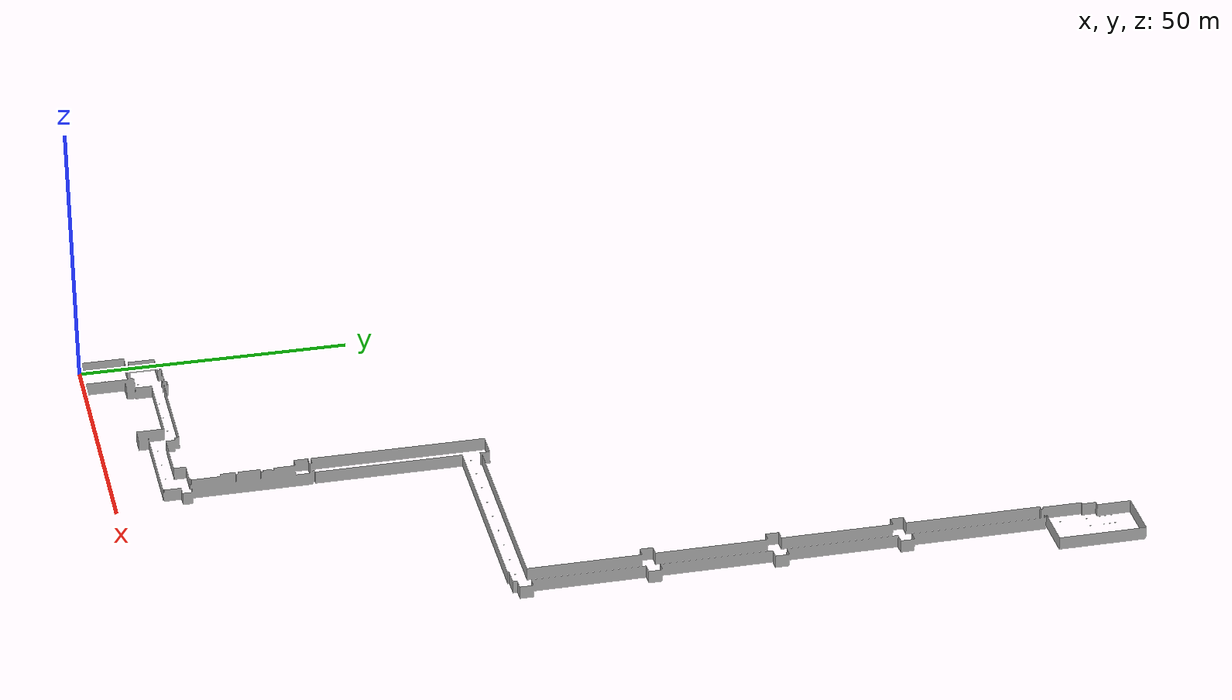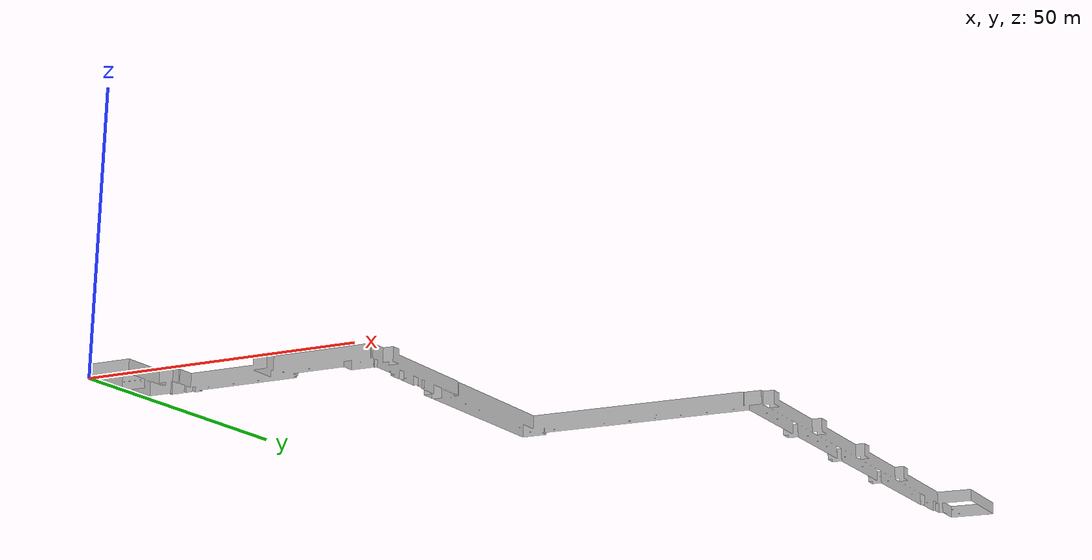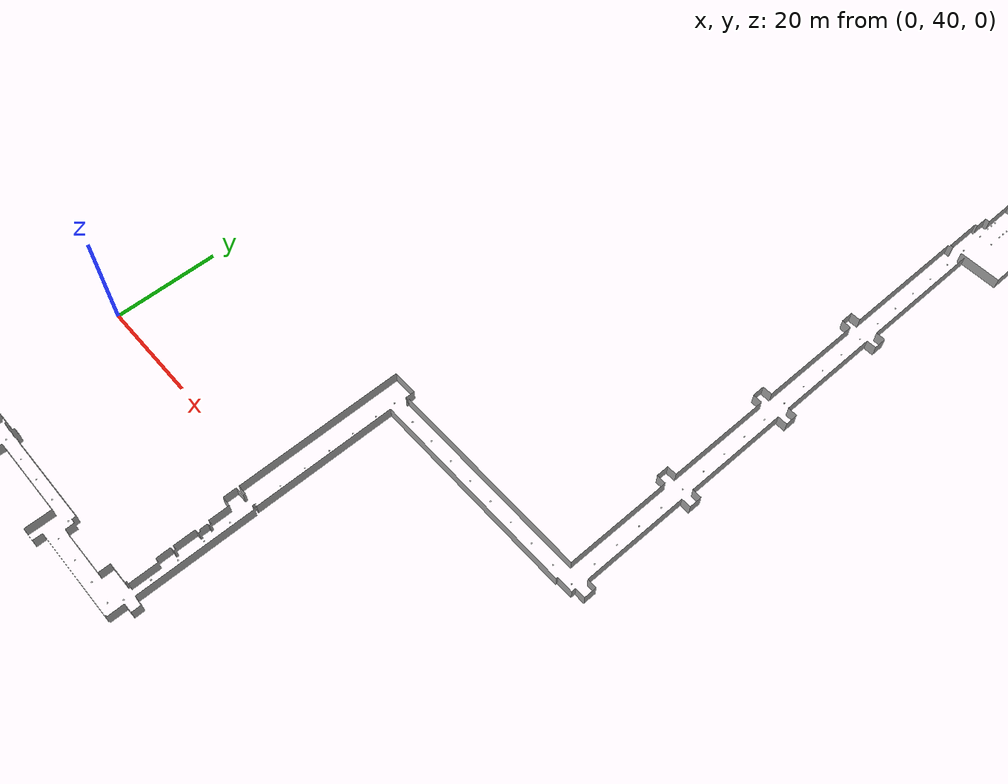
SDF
<?xml version="1.0" ?>
<sdf version="1.5">
  <model name="agvs_floor_1">
    <static>true</static>
    <pose>0 0 0 0 0 0</pose>
    <link name="walls">
      <collision name="collision">
        <geometry>
          <mesh>
            <uri>model://agvs_floor_1/meshes/floor_1.dae</uri>
          </mesh>
        </geometry>
      </collision>
      <visual name="visual">
        <geometry>
          <mesh>
            <uri>model://agvs_floor_1/meshes/floor_1.dae</uri>
          </mesh>
        </geometry>
        <cast_shadows>false</cast_shadows>
      </visual>
    </link>
    <link name="magnets">
      <visual name="visual">
        <geometry>
          <mesh>
            <uri>model://agvs_floor_1/meshes/floor_magnets_1.dae</uri>
          </mesh>
        </geometry>
        <cast_shadows>false</cast_shadows>
      </visual>
    </link>
  </model>
</sdf>
